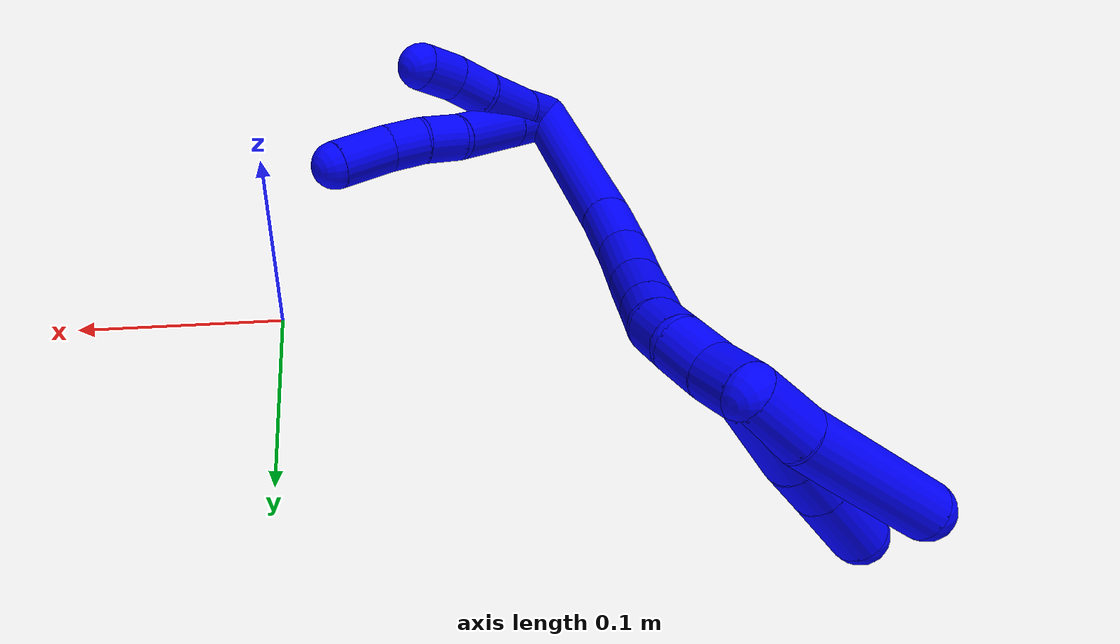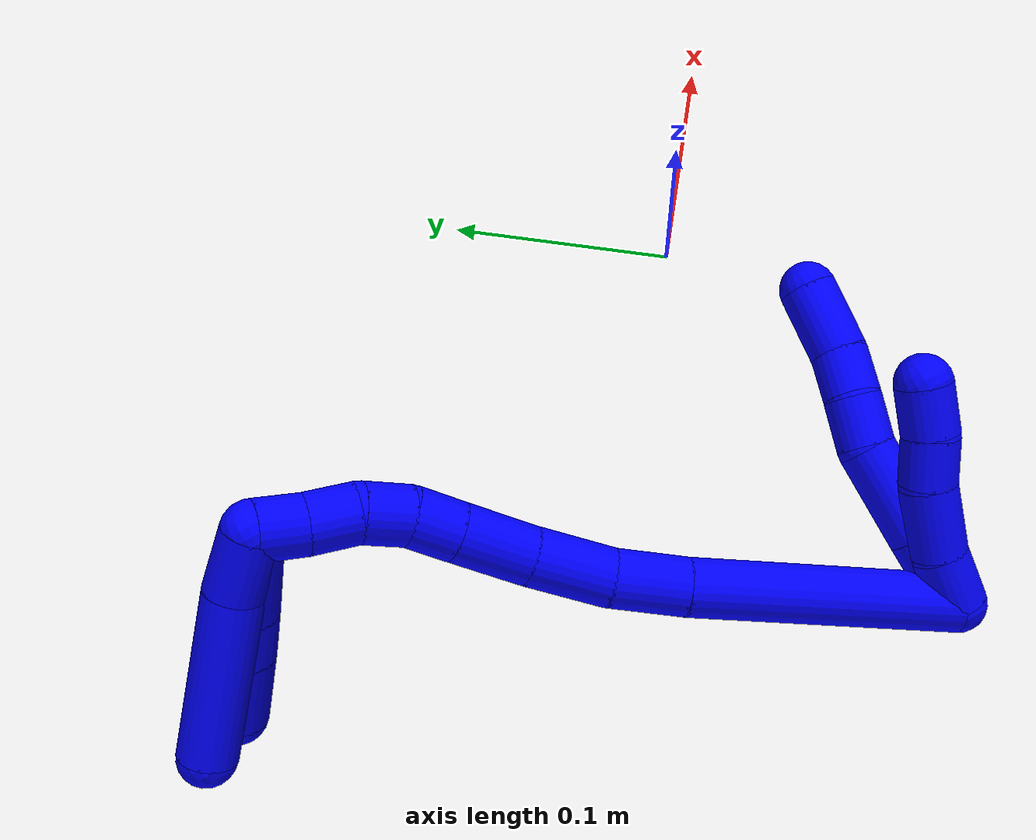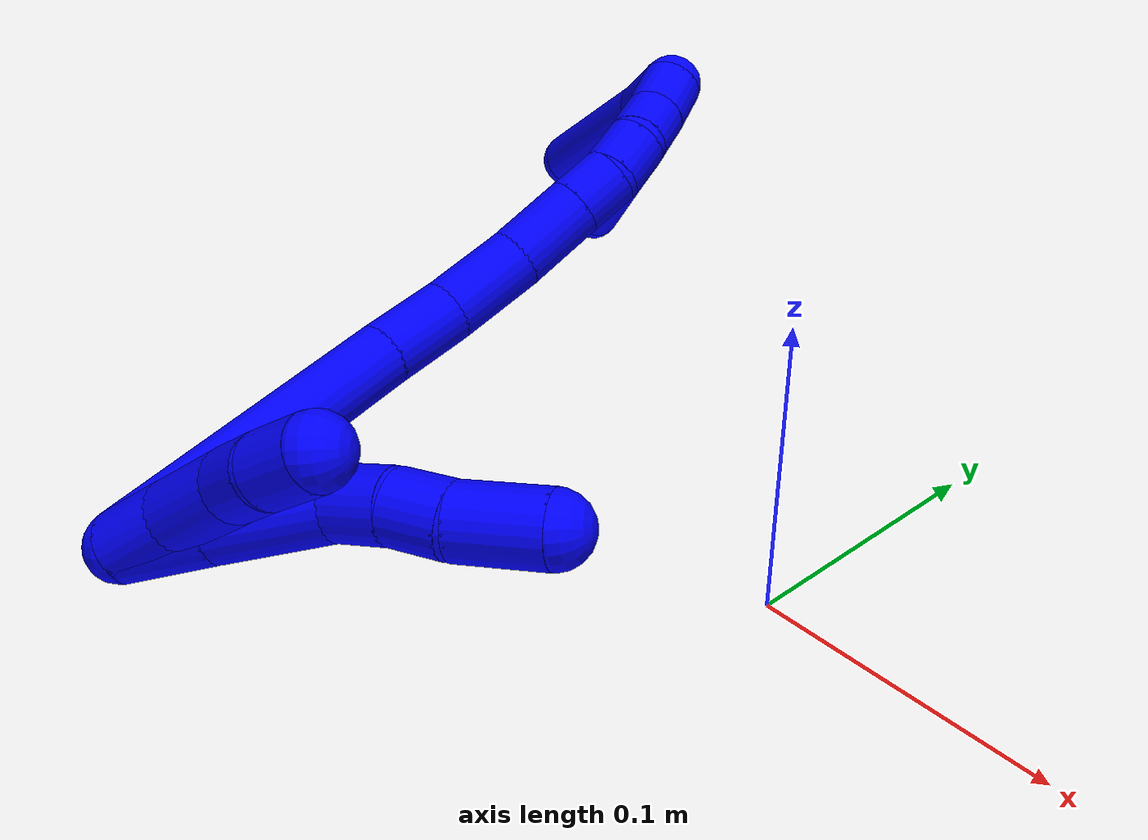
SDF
<sdf version="1.7">
 <world name="default">
  <model name="photoneo_s_sensor">
   <static>1</static>
   <pose>0 0 2 1.57079 1.57079 3.14159</pose>
   <link name="link">
    <inertial><mass>0.1</mass></inertial>
    <sensor name="sensor" type="depth">
     <update_rate>30</update_rate>
     <camera>
      <horizontal_fov>1.22</horizontal_fov>
      <image><width>1920</width><height>1200</height><format>B8G8R8</format></image>
      <clip><near>0.1</near><far>4</far></clip>
      <depth_camera><output>points</output></depth_camera>
     </camera>
     <plugin name="camera_plugin" filename="libgazebo_ros_depth_camera.so">
      <baseline>0.2</baseline>
      <alwaysOn>1</alwaysOn>
      <updateRate>0.0</updateRate>
      <cameraName>camera_ir</cameraName>
      <imageTopicName>/camera/color/image_raw</imageTopicName>
      <cameraInfoTopicName>/camera/color/camera_info</cameraInfoTopicName>
      <depthImageTopicName>/camera/depth/image_raw</depthImageTopicName>
      <depthImageCameraInfoTopicName>/camera/depth/camera_info</depthImageCameraInfoTopicName>
      <pointCloudTopicName>/camera/depth/points</pointCloudTopicName>
      <frameName>fr_optical</frameName>
      <pointCloudCutoff>0.1</pointCloudCutoff>
      <pointCloudCutoffMax>2.0</pointCloudCutoffMax>
      <distortionK1>0</distortionK1>
      <distortionK2>0</distortionK2>
      <distortionK3>0</distortionK3>
      <distortionT1>0</distortionT1>
      <distortionT2>0</distortionT2>
      <CxPrime>0</CxPrime>
      <Cx>0</Cx>
      <Cy>0</Cy>
      <focalLength>0</focalLength>
      <hackBaseline>0</hackBaseline>
     </plugin>
    </sensor>
   </link>
  </model>
  <model name="bin">
   <static>1</static>
   <link name="bottom">
    <collision name="collision-bottom">
     <pose>0 0 -0.01 0 -0 0</pose>
     <geometry><box><size>0.8 0.6 0.02</size></box></geometry>
     <surface>
      <friction><ode><mu>100</mu><mu2>100</mu2></ode></friction>
      <contact><collide_bitmask>65535</collide_bitmask></contact>
     </surface>
    </collision>
   </link>
   <link name="west_wall">
    <collision name="collision-west_wall">
     <pose>-0.41 0 0.1 0 -0 0</pose>
     <geometry><box><size>0.02 0.6 0.2</size></box></geometry>
     <surface>
      <friction><ode><mu>100</mu><mu2>100</mu2></ode></friction>
      <contact><collide_bitmask>65535</collide_bitmask></contact>
     </surface>
    </collision>
   </link>
   <link name="east_wall">
    <collision name="collision-east_wall">
     <pose>0.41 0 0.1 0 -0 0</pose>
     <geometry><box><size>0.02 0.6 0.2</size></box></geometry>
     <surface>
      <friction><ode><mu>100</mu><mu2>100</mu2></ode></friction>
      <contact><collide_bitmask>65535</collide_bitmask></contact>
     </surface>
    </collision>
   </link>
   <link name="south_wall">
    <collision name="collision-south_wall">
     <pose>0 -0.31 0.1 0 -0 0</pose>
     <geometry><box><size>0.8 0.02 0.2</size></box></geometry>
     <surface>
      <friction><ode><mu>100</mu><mu2>100</mu2></ode></friction>
      <contact><collide_bitmask>65535</collide_bitmask></contact>
     </surface>
    </collision>
   </link>
   <link name="north_wall">
    <collision name="collision-north_wall">
     <pose>0 0.31 0.1 0 -0 0</pose>
     <geometry><box><size>0.8 0.02 0.2</size></box></geometry>
     <surface>
      <friction><ode><mu>100</mu><mu2>100</mu2></ode></friction>
      <contact><collide_bitmask>65535</collide_bitmask></contact>
     </surface>
    </collision>
   </link>
  </model>
  <model name="1">
   <static>0</static>
   <link name="1">
    <collision name="collision-cylinder-e_1_2_8">
     <pose>0.001234 0.002123 -0.016681 -3.015 0.073223 -1.04803</pose>
     <geometry><cylinder><radius>0.0125</radius><length>0.033722</length></cylinder></geometry>
     <surface>
      <friction><ode><mu>1.16</mu><mu2>1.16</mu2><slip1>0</slip1><slip2>0</slip2></ode></friction>
      <contact><ode><kp>1e+06</kp><kd>1</kd><max_vel>0</max_vel><min_depth>0.001</min_depth></ode></contact>
     </surface>
    </collision>
    <visual name="visual-cylinder-e_1_2_8">
     <pose>0.001234 0.002123 -0.016681 -3.015 0.073223 -1.04803</pose>
     <geometry><cylinder><radius>0.0125</radius><length>0.033722</length></cylinder></geometry>
     <material><ambient>0 0 1 1</ambient></material>
    </visual>
    <collision name="collision-cylinder-e_2_8_9">
     <pose>0.004088 0.006575 -0.054547 -3.03208 0.07593 -1.21203</pose>
     <geometry><cylinder><radius>0.0125</radius><length>0.042747</length></cylinder></geometry>
     <surface>
      <friction><ode><mu>1.16</mu><mu2>1.16</mu2><slip1>0</slip1><slip2>0</slip2></ode></friction>
      <contact><ode><kp>1e+06</kp><kd>1</kd><max_vel>0</max_vel><min_depth>0.001</min_depth></ode></contact>
     </surface>
    </collision>
    <visual name="visual-cylinder-e_2_8_9">
     <pose>0.004088 0.006575 -0.054547 -3.03208 0.07593 -1.21203</pose>
     <geometry><cylinder><radius>0.0125</radius><length>0.042747</length></cylinder></geometry>
     <material><ambient>0 0 1 1</ambient></material>
    </visual>
    <collision name="collision-cylinder-e_3_9_10">
     <pose>0.007836 0.007129 -0.086274 2.97472 0.196364 1.73373</pose>
     <geometry><cylinder><radius>0.0125</radius><length>0.021802</length></cylinder></geometry>
     <surface>
      <friction><ode><mu>1.16</mu><mu2>1.16</mu2><slip1>0</slip1><slip2>0</slip2></ode></friction>
      <contact><ode><kp>1e+06</kp><kd>1</kd><max_vel>0</max_vel><min_depth>0.001</min_depth></ode></contact>
     </surface>
    </collision>
    <visual name="visual-cylinder-e_3_9_10">
     <pose>0.007836 0.007129 -0.086274 2.97472 0.196364 1.73373</pose>
     <geometry><cylinder><radius>0.0125</radius><length>0.021802</length></cylinder></geometry>
     <material><ambient>0 0 1 1</ambient></material>
    </visual>
    <collision name="collision-cylinder-e_4_10_11">
     <pose>0.010733 0.002442 -0.106555 2.8511 0.075607 0.506049</pose>
     <geometry><cylinder><radius>0.0125</radius><length>0.020386</length></cylinder></geometry>
     <surface>
      <friction><ode><mu>1.16</mu><mu2>1.16</mu2><slip1>0</slip1><slip2>0</slip2></ode></friction>
      <contact><ode><kp>1e+06</kp><kd>1</kd><max_vel>0</max_vel><min_depth>0.001</min_depth></ode></contact>
     </surface>
    </collision>
    <visual name="visual-cylinder-e_4_10_11">
     <pose>0.010733 0.002442 -0.106555 2.8511 0.075607 0.506049</pose>
     <geometry><cylinder><radius>0.0125</radius><length>0.020386</length></cylinder></geometry>
     <material><ambient>0 0 1 1</ambient></material>
    </visual>
    <collision name="collision-cylinder-e_5_11_6">
     <pose>0.011523 -0.002419 -0.131843 3.01688 0.001261 0.02019</pose>
     <geometry><cylinder><radius>0.0125</radius><length>0.031343</length></cylinder></geometry>
     <surface>
      <friction><ode><mu>1.16</mu><mu2>1.16</mu2><slip1>0</slip1><slip2>0</slip2></ode></friction>
      <contact><ode><kp>1e+06</kp><kd>1</kd><max_vel>0</max_vel><min_depth>0.001</min_depth></ode></contact>
     </surface>
    </collision>
    <visual name="visual-cylinder-e_5_11_6">
     <pose>0.011523 -0.002419 -0.131843 3.01688 0.001261 0.02019</pose>
     <geometry><cylinder><radius>0.0125</radius><length>0.031343</length></cylinder></geometry>
     <material><ambient>0 0 1 1</ambient></material>
    </visual>
    <collision name="collision-cylinder-e_1_2_12">
     <pose>0.004422 0.00313 -0.011455 -2.87483 0.356481 -1.86127</pose>
     <geometry><cylinder><radius>0.0125</radius><length>0.025344</length></cylinder></geometry>
     <surface>
      <friction><ode><mu>1.16</mu><mu2>1.16</mu2><slip1>0</slip1><slip2>0</slip2></ode></friction>
      <contact><ode><kp>1e+06</kp><kd>1</kd><max_vel>0</max_vel><min_depth>0.001</min_depth></ode></contact>
     </surface>
    </collision>
    <visual name="visual-cylinder-e_1_2_12">
     <pose>0.004422 0.00313 -0.011455 -2.87483 0.356481 -1.86127</pose>
     <geometry><cylinder><radius>0.0125</radius><length>0.025344</length></cylinder></geometry>
     <material><ambient>0 0 1 1</ambient></material>
    </visual>
    <collision name="collision-cylinder-e_2_12_13">
     <pose>0.016425 0.008169 -0.036508 -3.00218 0.504418 -2.61242</pose>
     <geometry><cylinder><radius>0.0125</radius><length>0.031368</length></cylinder></geometry>
     <surface>
      <friction><ode><mu>1.16</mu><mu2>1.16</mu2><slip1>0</slip1><slip2>0</slip2></ode></friction>
      <contact><ode><kp>1e+06</kp><kd>1</kd><max_vel>0</max_vel><min_depth>0.001</min_depth></ode></contact>
     </surface>
    </collision>
    <visual name="visual-cylinder-e_2_12_13">
     <pose>0.016425 0.008169 -0.036508 -3.00218 0.504418 -2.61242</pose>
     <geometry><cylinder><radius>0.0125</radius><length>0.031368</length></cylinder></geometry>
     <material><ambient>0 0 1 1</ambient></material>
    </visual>
    <collision name="collision-cylinder-e_3_13_14">
     <pose>0.030452 0.00967 -0.058621 3.09381 0.647519 2.99942</pose>
     <geometry><cylinder><radius>0.0125</radius><length>0.021376</length></cylinder></geometry>
     <surface>
      <friction><ode><mu>1.16</mu><mu2>1.16</mu2><slip1>0</slip1><slip2>0</slip2></ode></friction>
      <contact><ode><kp>1e+06</kp><kd>1</kd><max_vel>0</max_vel><min_depth>0.001</min_depth></ode></contact>
     </surface>
    </collision>
    <visual name="visual-cylinder-e_3_13_14">
     <pose>0.030452 0.00967 -0.058621 3.09381 0.647519 2.99942</pose>
     <geometry><cylinder><radius>0.0125</radius><length>0.021376</length></cylinder></geometry>
     <material><ambient>0 0 1 1</ambient></material>
    </visual>
    <collision name="collision-cylinder-e_4_14_5">
     <pose>0.041933 0.009735 -0.076855 -3.09307 0.477416 -2.9428</pose>
     <geometry><cylinder><radius>0.0125</radius><length>0.021912</length></cylinder></geometry>
     <surface>
      <friction><ode><mu>1.16</mu><mu2>1.16</mu2><slip1>0</slip1><slip2>0</slip2></ode></friction>
      <contact><ode><kp>1e+06</kp><kd>1</kd><max_vel>0</max_vel><min_depth>0.001</min_depth></ode></contact>
     </surface>
    </collision>
    <visual name="visual-cylinder-e_4_14_5">
     <pose>0.041933 0.009735 -0.076855 -3.09307 0.477416 -2.9428</pose>
     <geometry><cylinder><radius>0.0125</radius><length>0.021912</length></cylinder></geometry>
     <material><ambient>0 0 1 1</ambient></material>
    </visual>
    <collision name="collision-cylinder-e_1_2_15">
     <pose>-0.026755 0.042532 -0.030605 -2.19453 -0.472097 0.877752</pose>
     <geometry><cylinder><radius>0.0125</radius><length>0.117669</length></cylinder></geometry>
     <surface>
      <friction><ode><mu>1.16</mu><mu2>1.16</mu2><slip1>0</slip1><slip2>0</slip2></ode></friction>
      <contact><ode><kp>1e+06</kp><kd>1</kd><max_vel>0</max_vel><min_depth>0.001</min_depth></ode></contact>
     </surface>
    </collision>
    <visual name="visual-cylinder-e_1_2_15">
     <pose>-0.026755 0.042532 -0.030605 -2.19453 -0.472097 0.877752</pose>
     <geometry><cylinder><radius>0.0125</radius><length>0.117669</length></cylinder></geometry>
     <material><ambient>0 0 1 1</ambient></material>
    </visual>
    <collision name="collision-cylinder-e_2_15_16">
     <pose>-0.060474 0.096439 -0.070464 -2.2538 -0.443386 0.88522</pose>
     <geometry><cylinder><radius>0.0125</radius><length>0.032466</length></cylinder></geometry>
     <surface>
      <friction><ode><mu>1.16</mu><mu2>1.16</mu2><slip1>0</slip1><slip2>0</slip2></ode></friction>
      <contact><ode><kp>1e+06</kp><kd>1</kd><max_vel>0</max_vel><min_depth>0.001</min_depth></ode></contact>
     </surface>
    </collision>
    <visual name="visual-cylinder-e_2_15_16">
     <pose>-0.060474 0.096439 -0.070464 -2.2538 -0.443386 0.88522</pose>
     <geometry><cylinder><radius>0.0125</radius><length>0.032466</length></cylinder></geometry>
     <material><ambient>0 0 1 1</ambient></material>
    </visual>
    <collision name="collision-cylinder-e_3_16_17">
     <pose>-0.072106 0.120261 -0.091287 -2.3196 -0.268064 0.600108</pose>
     <geometry><cylinder><radius>0.0125</radius><length>0.035246</length></cylinder></geometry>
     <surface>
      <friction><ode><mu>1.16</mu><mu2>1.16</mu2><slip1>0</slip1><slip2>0</slip2></ode></friction>
      <contact><ode><kp>1e+06</kp><kd>1</kd><max_vel>0</max_vel><min_depth>0.001</min_depth></ode></contact>
     </surface>
    </collision>
    <visual name="visual-cylinder-e_3_16_17">
     <pose>-0.072106 0.120261 -0.091287 -2.3196 -0.268064 0.600108</pose>
     <geometry><cylinder><radius>0.0125</radius><length>0.035246</length></cylinder></geometry>
     <material><ambient>0 0 1 1</ambient></material>
    </visual>
    <collision name="collision-cylinder-e_4_17_18">
     <pose>-0.079427 0.144408 -0.113592 -2.31331 -0.165537 0.373071</pose>
     <geometry><cylinder><radius>0.0125</radius><length>0.032198</length></cylinder></geometry>
     <surface>
      <friction><ode><mu>1.16</mu><mu2>1.16</mu2><slip1>0</slip1><slip2>0</slip2></ode></friction>
      <contact><ode><kp>1e+06</kp><kd>1</kd><max_vel>0</max_vel><min_depth>0.001</min_depth></ode></contact>
     </surface>
    </collision>
    <visual name="visual-cylinder-e_4_17_18">
     <pose>-0.079427 0.144408 -0.113592 -2.31331 -0.165537 0.373071</pose>
     <geometry><cylinder><radius>0.0125</radius><length>0.032198</length></cylinder></geometry>
     <material><ambient>0 0 1 1</ambient></material>
    </visual>
    <collision name="collision-cylinder-e_5_18_19">
     <pose>-0.083729 0.163463 -0.131228 -2.32417 -0.162067 0.370721</pose>
     <geometry><cylinder><radius>0.0125</radius><length>0.020439</length></cylinder></geometry>
     <surface>
      <friction><ode><mu>1.16</mu><mu2>1.16</mu2><slip1>0</slip1><slip2>0</slip2></ode></friction>
      <contact><ode><kp>1e+06</kp><kd>1</kd><max_vel>0</max_vel><min_depth>0.001</min_depth></ode></contact>
     </surface>
    </collision>
    <visual name="visual-cylinder-e_5_18_19">
     <pose>-0.083729 0.163463 -0.131228 -2.32417 -0.162067 0.370721</pose>
     <geometry><cylinder><radius>0.0125</radius><length>0.020439</length></cylinder></geometry>
     <material><ambient>0 0 1 1</ambient></material>
    </visual>
    <collision name="collision-cylinder-e_6_19_20">
     <pose>-0.087686 0.179511 -0.142829 -2.06666 -0.229466 0.382</pose>
     <geometry><cylinder><radius>0.0125</radius><length>0.020296</length></cylinder></geometry>
     <surface>
      <friction><ode><mu>1.16</mu><mu2>1.16</mu2><slip1>0</slip1><slip2>0</slip2></ode></friction>
      <contact><ode><kp>1e+06</kp><kd>1</kd><max_vel>0</max_vel><min_depth>0.001</min_depth></ode></contact>
     </surface>
    </collision>
    <visual name="visual-cylinder-e_6_19_20">
     <pose>-0.087686 0.179511 -0.142829 -2.06666 -0.229466 0.382</pose>
     <geometry><cylinder><radius>0.0125</radius><length>0.020296</length></cylinder></geometry>
     <material><ambient>0 0 1 1</ambient></material>
    </visual>
    <collision name="collision-cylinder-e_7_20_21">
     <pose>-0.094872 0.19724 -0.150149 -1.85282 -0.478321 0.62757</pose>
     <geometry><cylinder><radius>0.0125</radius><length>0.021196</length></cylinder></geometry>
     <surface>
      <friction><ode><mu>1.16</mu><mu2>1.16</mu2><slip1>0</slip1><slip2>0</slip2></ode></friction>
      <contact><ode><kp>1e+06</kp><kd>1</kd><max_vel>0</max_vel><min_depth>0.001</min_depth></ode></contact>
     </surface>
    </collision>
    <visual name="visual-cylinder-e_7_20_21">
     <pose>-0.094872 0.19724 -0.150149 -1.85282 -0.478321 0.62757</pose>
     <geometry><cylinder><radius>0.0125</radius><length>0.021196</length></cylinder></geometry>
     <material><ambient>0 0 1 1</ambient></material>
    </visual>
    <collision name="collision-cylinder-e_8_21_1">
     <pose>-0.102668 0.215593 -0.155873 -1.89258 -0.288789 0.398151</pose>
     <geometry><cylinder><radius>0.0125</radius><length>0.020491</length></cylinder></geometry>
     <surface>
      <friction><ode><mu>1.16</mu><mu2>1.16</mu2><slip1>0</slip1><slip2>0</slip2></ode></friction>
      <contact><ode><kp>1e+06</kp><kd>1</kd><max_vel>0</max_vel><min_depth>0.001</min_depth></ode></contact>
     </surface>
    </collision>
    <visual name="visual-cylinder-e_8_21_1">
     <pose>-0.102668 0.215593 -0.155873 -1.89258 -0.288789 0.398151</pose>
     <geometry><cylinder><radius>0.0125</radius><length>0.020491</length></cylinder></geometry>
     <material><ambient>0 0 1 1</ambient></material>
    </visual>
    <collision name="collision-cylinder-e_1_1_22">
     <pose>-0.123408 0.221867 -0.14792 0.268562 -0.998954 -0.147155</pose>
     <geometry><cylinder><radius>0.0125</radius><length>0.042389</length></cylinder></geometry>
     <surface>
      <friction><ode><mu>1.16</mu><mu2>1.16</mu2><slip1>0</slip1><slip2>0</slip2></ode></friction>
      <contact><ode><kp>1e+06</kp><kd>1</kd><max_vel>0</max_vel><min_depth>0.001</min_depth></ode></contact>
     </surface>
    </collision>
    <visual name="visual-cylinder-e_1_1_22">
     <pose>-0.123408 0.221867 -0.14792 0.268562 -0.998954 -0.147155</pose>
     <geometry><cylinder><radius>0.0125</radius><length>0.042389</length></cylinder></geometry>
     <material><ambient>0 0 1 1</ambient></material>
    </visual>
    <collision name="collision-cylinder-e_2_22_23">
     <pose>-0.150432 0.217934 -0.13052 0.139313 -0.962796 -0.072861</pose>
     <geometry><cylinder><radius>0.0125</radius><length>0.02242</length></cylinder></geometry>
     <surface>
      <friction><ode><mu>1.16</mu><mu2>1.16</mu2><slip1>0</slip1><slip2>0</slip2></ode></friction>
      <contact><ode><kp>1e+06</kp><kd>1</kd><max_vel>0</max_vel><min_depth>0.001</min_depth></ode></contact>
     </surface>
    </collision>
    <visual name="visual-cylinder-e_2_22_23">
     <pose>-0.150432 0.217934 -0.13052 0.139313 -0.962796 -0.072861</pose>
     <geometry><cylinder><radius>0.0125</radius><length>0.02242</length></cylinder></geometry>
     <material><ambient>0 0 1 1</ambient></material>
    </visual>
    <collision name="collision-cylinder-e_3_23_4">
     <pose>-0.174319 0.215922 -0.114552 0.11613 -0.98746 -0.06255</pose>
     <geometry><cylinder><radius>0.0125</radius><length>0.03519</length></cylinder></geometry>
     <surface>
      <friction><ode><mu>1.16</mu><mu2>1.16</mu2><slip1>0</slip1><slip2>0</slip2></ode></friction>
      <contact><ode><kp>1e+06</kp><kd>1</kd><max_vel>0</max_vel><min_depth>0.001</min_depth></ode></contact>
     </surface>
    </collision>
    <visual name="visual-cylinder-e_3_23_4">
     <pose>-0.174319 0.215922 -0.114552 0.11613 -0.98746 -0.06255</pose>
     <geometry><cylinder><radius>0.0125</radius><length>0.03519</length></cylinder></geometry>
     <material><ambient>0 0 1 1</ambient></material>
    </visual>
    <collision name="collision-cylinder-e_1_1_24">
     <pose>-0.116932 0.227245 -0.151166 -0.290398 -0.947637 0.149685</pose>
     <geometry><cylinder><radius>0.0125</radius><length>0.027946</length></cylinder></geometry>
     <surface>
      <friction><ode><mu>1.16</mu><mu2>1.16</mu2><slip1>0</slip1><slip2>0</slip2></ode></friction>
      <contact><ode><kp>1e+06</kp><kd>1</kd><max_vel>0</max_vel><min_depth>0.001</min_depth></ode></contact>
     </surface>
    </collision>
    <visual name="visual-cylinder-e_1_1_24">
     <pose>-0.116932 0.227245 -0.151166 -0.290398 -0.947637 0.149685</pose>
     <geometry><cylinder><radius>0.0125</radius><length>0.027946</length></cylinder></geometry>
     <material><ambient>0 0 1 1</ambient></material>
    </visual>
    <collision name="collision-cylinder-e_2_24_3">
     <pose>-0.154402 0.23502 -0.119147 -0.22106 -0.811176 0.095239</pose>
     <geometry><cylinder><radius>0.0125</radius><length>0.072054</length></cylinder></geometry>
     <surface>
      <friction><ode><mu>1.16</mu><mu2>1.16</mu2><slip1>0</slip1><slip2>0</slip2></ode></friction>
      <contact><ode><kp>1e+06</kp><kd>1</kd><max_vel>0</max_vel><min_depth>0.001</min_depth></ode></contact>
     </surface>
    </collision>
    <visual name="visual-cylinder-e_2_24_3">
     <pose>-0.154402 0.23502 -0.119147 -0.22106 -0.811176 0.095239</pose>
     <geometry><cylinder><radius>0.0125</radius><length>0.072054</length></cylinder></geometry>
     <material><ambient>0 0 1 1</ambient></material>
    </visual>
    <collision name="collision-sphere-3">
     <pose>-0.180525 0.24046 -0.094941 0 -0 0</pose>
     <geometry><sphere><radius>0.0125</radius></sphere></geometry>
     <surface>
      <friction><ode><mu>1.16</mu><mu2>1.16</mu2><slip1>0</slip1><slip2>0</slip2></ode></friction>
      <contact><ode><kp>1e+06</kp><kd>1</kd><max_vel>0</max_vel><min_depth>0.001</min_depth></ode></contact>
     </surface>
    </collision>
    <visual name="visual-sphere-3">
     <pose>-0.180525 0.24046 -0.094941 0 -0 0</pose>
     <geometry><sphere><radius>0.0125</radius></sphere></geometry>
     <material><ambient>0 0 1 1</ambient></material>
    </visual>
    <collision name="collision-sphere-24">
     <pose>-0.128279 0.22958 -0.143353 0 -0 0</pose>
     <geometry><sphere><radius>0.0125</radius></sphere></geometry>
     <surface>
      <friction><ode><mu>1.16</mu><mu2>1.16</mu2><slip1>0</slip1><slip2>0</slip2></ode></friction>
      <contact><ode><kp>1e+06</kp><kd>1</kd><max_vel>0</max_vel><min_depth>0.001</min_depth></ode></contact>
     </surface>
    </collision>
    <visual name="visual-sphere-24">
     <pose>-0.128279 0.22958 -0.143353 0 -0 0</pose>
     <geometry><sphere><radius>0.0125</radius></sphere></geometry>
     <material><ambient>0 0 1 1</ambient></material>
    </visual>
    <collision name="collision-sphere-4">
     <pose>-0.189005 0.214799 -0.104926 0 -0 0</pose>
     <geometry><sphere><radius>0.0125</radius></sphere></geometry>
     <surface>
      <friction><ode><mu>1.16</mu><mu2>1.16</mu2><slip1>0</slip1><slip2>0</slip2></ode></friction>
      <contact><ode><kp>1e+06</kp><kd>1</kd><max_vel>0</max_vel><min_depth>0.001</min_depth></ode></contact>
     </surface>
    </collision>
    <visual name="visual-sphere-4">
     <pose>-0.189005 0.214799 -0.104926 0 -0 0</pose>
     <geometry><sphere><radius>0.0125</radius></sphere></geometry>
     <material><ambient>0 0 1 1</ambient></material>
    </visual>
    <collision name="collision-sphere-23">
     <pose>-0.159634 0.217045 -0.124178 0 -0 0</pose>
     <geometry><sphere><radius>0.0125</radius></sphere></geometry>
     <surface>
      <friction><ode><mu>1.16</mu><mu2>1.16</mu2><slip1>0</slip1><slip2>0</slip2></ode></friction>
      <contact><ode><kp>1e+06</kp><kd>1</kd><max_vel>0</max_vel><min_depth>0.001</min_depth></ode></contact>
     </surface>
    </collision>
    <visual name="visual-sphere-23">
     <pose>-0.159634 0.217045 -0.124178 0 -0 0</pose>
     <geometry><sphere><radius>0.0125</radius></sphere></geometry>
     <material><ambient>0 0 1 1</ambient></material>
    </visual>
    <collision name="collision-sphere-22">
     <pose>-0.141231 0.218823 -0.136862 0 -0 0</pose>
     <geometry><sphere><radius>0.0125</radius></sphere></geometry>
     <surface>
      <friction><ode><mu>1.16</mu><mu2>1.16</mu2><slip1>0</slip1><slip2>0</slip2></ode></friction>
      <contact><ode><kp>1e+06</kp><kd>1</kd><max_vel>0</max_vel><min_depth>0.001</min_depth></ode></contact>
     </surface>
    </collision>
    <visual name="visual-sphere-22">
     <pose>-0.141231 0.218823 -0.136862 0 -0 0</pose>
     <geometry><sphere><radius>0.0125</radius></sphere></geometry>
     <material><ambient>0 0 1 1</ambient></material>
    </visual>
    <collision name="collision-sphere-1">
     <pose>-0.105586 0.22491 -0.158979 0 -0 0</pose>
     <geometry><sphere><radius>0.0125</radius></sphere></geometry>
     <surface>
      <friction><ode><mu>1.16</mu><mu2>1.16</mu2><slip1>0</slip1><slip2>0</slip2></ode></friction>
      <contact><ode><kp>1e+06</kp><kd>1</kd><max_vel>0</max_vel><min_depth>0.001</min_depth></ode></contact>
     </surface>
    </collision>
    <visual name="visual-sphere-1">
     <pose>-0.105586 0.22491 -0.158979 0 -0 0</pose>
     <geometry><sphere><radius>0.0125</radius></sphere></geometry>
     <material><ambient>0 0 1 1</ambient></material>
    </visual>
    <collision name="collision-sphere-21">
     <pose>-0.09975 0.206277 -0.152767 0 -0 0</pose>
     <geometry><sphere><radius>0.0125</radius></sphere></geometry>
     <surface>
      <friction><ode><mu>1.16</mu><mu2>1.16</mu2><slip1>0</slip1><slip2>0</slip2></ode></friction>
      <contact><ode><kp>1e+06</kp><kd>1</kd><max_vel>0</max_vel><min_depth>0.001</min_depth></ode></contact>
     </surface>
    </collision>
    <visual name="visual-sphere-21">
     <pose>-0.09975 0.206277 -0.152767 0 -0 0</pose>
     <geometry><sphere><radius>0.0125</radius></sphere></geometry>
     <material><ambient>0 0 1 1</ambient></material>
    </visual>
    <collision name="collision-sphere-6">
     <pose>0.011543 -0.004368 -0.147393 0 -0 0</pose>
     <geometry><sphere><radius>0.0125</radius></sphere></geometry>
     <surface>
      <friction><ode><mu>1.16</mu><mu2>1.16</mu2><slip1>0</slip1><slip2>0</slip2></ode></friction>
      <contact><ode><kp>1e+06</kp><kd>1</kd><max_vel>0</max_vel><min_depth>0.001</min_depth></ode></contact>
     </surface>
    </collision>
    <visual name="visual-sphere-6">
     <pose>0.011543 -0.004368 -0.147393 0 -0 0</pose>
     <geometry><sphere><radius>0.0125</radius></sphere></geometry>
     <material><ambient>0 0 1 1</ambient></material>
    </visual>
    <collision name="collision-sphere-11">
     <pose>0.011503 -0.000469 -0.116293 0 -0 0</pose>
     <geometry><sphere><radius>0.0125</radius></sphere></geometry>
     <surface>
      <friction><ode><mu>1.16</mu><mu2>1.16</mu2><slip1>0</slip1><slip2>0</slip2></ode></friction>
      <contact><ode><kp>1e+06</kp><kd>1</kd><max_vel>0</max_vel><min_depth>0.001</min_depth></ode></contact>
     </surface>
    </collision>
    <visual name="visual-sphere-11">
     <pose>0.011503 -0.000469 -0.116293 0 -0 0</pose>
     <geometry><sphere><radius>0.0125</radius></sphere></geometry>
     <material><ambient>0 0 1 1</ambient></material>
    </visual>
    <collision name="collision-sphere-10">
     <pose>0.009963 0.005353 -0.096817 0 -0 0</pose>
     <geometry><sphere><radius>0.0125</radius></sphere></geometry>
     <surface>
      <friction><ode><mu>1.16</mu><mu2>1.16</mu2><slip1>0</slip1><slip2>0</slip2></ode></friction>
      <contact><ode><kp>1e+06</kp><kd>1</kd><max_vel>0</max_vel><min_depth>0.001</min_depth></ode></contact>
     </surface>
    </collision>
    <visual name="visual-sphere-10">
     <pose>0.009963 0.005353 -0.096817 0 -0 0</pose>
     <geometry><sphere><radius>0.0125</radius></sphere></geometry>
     <material><ambient>0 0 1 1</ambient></material>
    </visual>
    <collision name="collision-sphere-9">
     <pose>0.00571 0.008905 -0.075731 0 -0 0</pose>
     <geometry><sphere><radius>0.0125</radius></sphere></geometry>
     <surface>
      <friction><ode><mu>1.16</mu><mu2>1.16</mu2><slip1>0</slip1><slip2>0</slip2></ode></friction>
      <contact><ode><kp>1e+06</kp><kd>1</kd><max_vel>0</max_vel><min_depth>0.001</min_depth></ode></contact>
     </surface>
    </collision>
    <visual name="visual-sphere-9">
     <pose>0.00571 0.008905 -0.075731 0 -0 0</pose>
     <geometry><sphere><radius>0.0125</radius></sphere></geometry>
     <material><ambient>0 0 1 1</ambient></material>
    </visual>
    <collision name="collision-sphere-2">
     <geometry><sphere><radius>0.0125</radius></sphere></geometry>
     <surface>
      <friction><ode><mu>1.16</mu><mu2>1.16</mu2><slip1>0</slip1><slip2>0</slip2></ode></friction>
      <contact><ode><kp>1e+06</kp><kd>1</kd><max_vel>0</max_vel><min_depth>0.001</min_depth></ode></contact>
     </surface>
    </collision>
    <visual name="visual-sphere-2">
     <geometry><sphere><radius>0.0125</radius></sphere></geometry>
     <material><ambient>0 0 1 1</ambient></material>
    </visual>
    <collision name="collision-sphere-19">
     <pose>-0.085378 0.170819 -0.138127 0 -0 0</pose>
     <geometry><sphere><radius>0.0125</radius></sphere></geometry>
     <surface>
      <friction><ode><mu>1.16</mu><mu2>1.16</mu2><slip1>0</slip1><slip2>0</slip2></ode></friction>
      <contact><ode><kp>1e+06</kp><kd>1</kd><max_vel>0</max_vel><min_depth>0.001</min_depth></ode></contact>
     </surface>
    </collision>
    <visual name="visual-sphere-19">
     <pose>-0.085378 0.170819 -0.138127 0 -0 0</pose>
     <geometry><sphere><radius>0.0125</radius></sphere></geometry>
     <material><ambient>0 0 1 1</ambient></material>
    </visual>
    <collision name="collision-sphere-8">
     <pose>0.002467 0.004246 -0.033363 0 -0 0</pose>
     <geometry><sphere><radius>0.0125</radius></sphere></geometry>
     <surface>
      <friction><ode><mu>1.16</mu><mu2>1.16</mu2><slip1>0</slip1><slip2>0</slip2></ode></friction>
      <contact><ode><kp>1e+06</kp><kd>1</kd><max_vel>0</max_vel><min_depth>0.001</min_depth></ode></contact>
     </surface>
    </collision>
    <visual name="visual-sphere-8">
     <pose>0.002467 0.004246 -0.033363 0 -0 0</pose>
     <geometry><sphere><radius>0.0125</radius></sphere></geometry>
     <material><ambient>0 0 1 1</ambient></material>
    </visual>
    <collision name="collision-sphere-12">
     <pose>0.008845 0.006261 -0.022911 0 -0 0</pose>
     <geometry><sphere><radius>0.0125</radius></sphere></geometry>
     <surface>
      <friction><ode><mu>1.16</mu><mu2>1.16</mu2><slip1>0</slip1><slip2>0</slip2></ode></friction>
      <contact><ode><kp>1e+06</kp><kd>1</kd><max_vel>0</max_vel><min_depth>0.001</min_depth></ode></contact>
     </surface>
    </collision>
    <visual name="visual-sphere-12">
     <pose>0.008845 0.006261 -0.022911 0 -0 0</pose>
     <geometry><sphere><radius>0.0125</radius></sphere></geometry>
     <material><ambient>0 0 1 1</ambient></material>
    </visual>
    <collision name="collision-sphere-13">
     <pose>0.024005 0.010077 -0.050106 0 -0 0</pose>
     <geometry><sphere><radius>0.0125</radius></sphere></geometry>
     <surface>
      <friction><ode><mu>1.16</mu><mu2>1.16</mu2><slip1>0</slip1><slip2>0</slip2></ode></friction>
      <contact><ode><kp>1e+06</kp><kd>1</kd><max_vel>0</max_vel><min_depth>0.001</min_depth></ode></contact>
     </surface>
    </collision>
    <visual name="visual-sphere-13">
     <pose>0.024005 0.010077 -0.050106 0 -0 0</pose>
     <geometry><sphere><radius>0.0125</radius></sphere></geometry>
     <material><ambient>0 0 1 1</ambient></material>
    </visual>
    <collision name="collision-sphere-14">
     <pose>0.036899 0.009263 -0.067135 0 -0 0</pose>
     <geometry><sphere><radius>0.0125</radius></sphere></geometry>
     <surface>
      <friction><ode><mu>1.16</mu><mu2>1.16</mu2><slip1>0</slip1><slip2>0</slip2></ode></friction>
      <contact><ode><kp>1e+06</kp><kd>1</kd><max_vel>0</max_vel><min_depth>0.001</min_depth></ode></contact>
     </surface>
    </collision>
    <visual name="visual-sphere-14">
     <pose>0.036899 0.009263 -0.067135 0 -0 0</pose>
     <geometry><sphere><radius>0.0125</radius></sphere></geometry>
     <material><ambient>0 0 1 1</ambient></material>
    </visual>
    <collision name="collision-sphere-5">
     <pose>0.046967 0.010207 -0.086574 0 -0 0</pose>
     <geometry><sphere><radius>0.0125</radius></sphere></geometry>
     <surface>
      <friction><ode><mu>1.16</mu><mu2>1.16</mu2><slip1>0</slip1><slip2>0</slip2></ode></friction>
      <contact><ode><kp>1e+06</kp><kd>1</kd><max_vel>0</max_vel><min_depth>0.001</min_depth></ode></contact>
     </surface>
    </collision>
    <visual name="visual-sphere-5">
     <pose>0.046967 0.010207 -0.086574 0 -0 0</pose>
     <geometry><sphere><radius>0.0125</radius></sphere></geometry>
     <material><ambient>0 0 1 1</ambient></material>
    </visual>
    <collision name="collision-sphere-15">
     <pose>-0.05351 0.085065 -0.061209 0 -0 0</pose>
     <geometry><sphere><radius>0.0125</radius></sphere></geometry>
     <surface>
      <friction><ode><mu>1.16</mu><mu2>1.16</mu2><slip1>0</slip1><slip2>0</slip2></ode></friction>
      <contact><ode><kp>1e+06</kp><kd>1</kd><max_vel>0</max_vel><min_depth>0.001</min_depth></ode></contact>
     </surface>
    </collision>
    <visual name="visual-sphere-15">
     <pose>-0.05351 0.085065 -0.061209 0 -0 0</pose>
     <geometry><sphere><radius>0.0125</radius></sphere></geometry>
     <material><ambient>0 0 1 1</ambient></material>
    </visual>
    <collision name="collision-sphere-16">
     <pose>-0.067438 0.107813 -0.079718 0 -0 0</pose>
     <geometry><sphere><radius>0.0125</radius></sphere></geometry>
     <surface>
      <friction><ode><mu>1.16</mu><mu2>1.16</mu2><slip1>0</slip1><slip2>0</slip2></ode></friction>
      <contact><ode><kp>1e+06</kp><kd>1</kd><max_vel>0</max_vel><min_depth>0.001</min_depth></ode></contact>
     </surface>
    </collision>
    <visual name="visual-sphere-16">
     <pose>-0.067438 0.107813 -0.079718 0 -0 0</pose>
     <geometry><sphere><radius>0.0125</radius></sphere></geometry>
     <material><ambient>0 0 1 1</ambient></material>
    </visual>
    <collision name="collision-sphere-17">
     <pose>-0.076774 0.132709 -0.102855 0 -0 0</pose>
     <geometry><sphere><radius>0.0125</radius></sphere></geometry>
     <surface>
      <friction><ode><mu>1.16</mu><mu2>1.16</mu2><slip1>0</slip1><slip2>0</slip2></ode></friction>
      <contact><ode><kp>1e+06</kp><kd>1</kd><max_vel>0</max_vel><min_depth>0.001</min_depth></ode></contact>
     </surface>
    </collision>
    <visual name="visual-sphere-17">
     <pose>-0.076774 0.132709 -0.102855 0 -0 0</pose>
     <geometry><sphere><radius>0.0125</radius></sphere></geometry>
     <material><ambient>0 0 1 1</ambient></material>
    </visual>
    <collision name="collision-sphere-18">
     <pose>-0.08208 0.156107 -0.124328 0 -0 0</pose>
     <geometry><sphere><radius>0.0125</radius></sphere></geometry>
     <surface>
      <friction><ode><mu>1.16</mu><mu2>1.16</mu2><slip1>0</slip1><slip2>0</slip2></ode></friction>
      <contact><ode><kp>1e+06</kp><kd>1</kd><max_vel>0</max_vel><min_depth>0.001</min_depth></ode></contact>
     </surface>
    </collision>
    <visual name="visual-sphere-18">
     <pose>-0.08208 0.156107 -0.124328 0 -0 0</pose>
     <geometry><sphere><radius>0.0125</radius></sphere></geometry>
     <material><ambient>0 0 1 1</ambient></material>
    </visual>
    <collision name="collision-sphere-20">
     <pose>-0.089994 0.188203 -0.147531 0 -0 0</pose>
     <geometry><sphere><radius>0.0125</radius></sphere></geometry>
     <surface>
      <friction><ode><mu>1.16</mu><mu2>1.16</mu2><slip1>0</slip1><slip2>0</slip2></ode></friction>
      <contact><ode><kp>1e+06</kp><kd>1</kd><max_vel>0</max_vel><min_depth>0.001</min_depth></ode></contact>
     </surface>
    </collision>
    <visual name="visual-sphere-20">
     <pose>-0.089994 0.188203 -0.147531 0 -0 0</pose>
     <geometry><sphere><radius>0.0125</radius></sphere></geometry>
     <material><ambient>0 0 1 1</ambient></material>
    </visual>
    <inertial>
     <pose>-0.058378 0.105358 -0.088281 0 -0 0</pose>
     <mass>0.75</mass>
     <inertia><ixx>0.00021</ixx><ixy>0</ixy><ixz>0</ixz><iyy>0.000142</iyy><iyz>0</iyz><izz>-4e-05</izz></inertia>
    </inertial>
   </link>
   <pose>-0.148937 -0.143434 0.011495 1.87476 -0.896264 -1.15377</pose>
  </model>
 </world>
</sdf>
